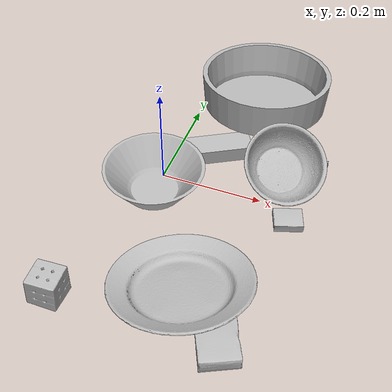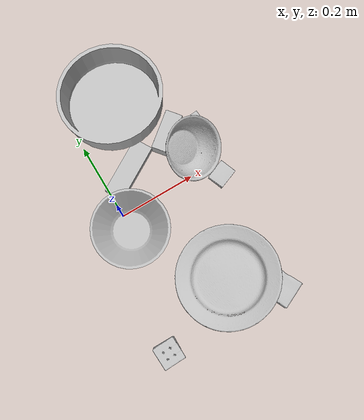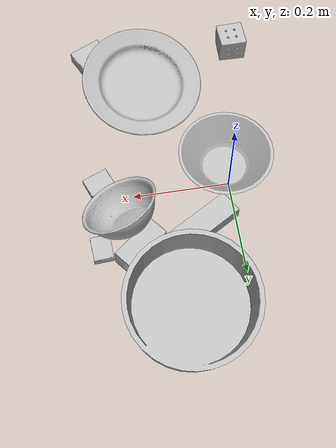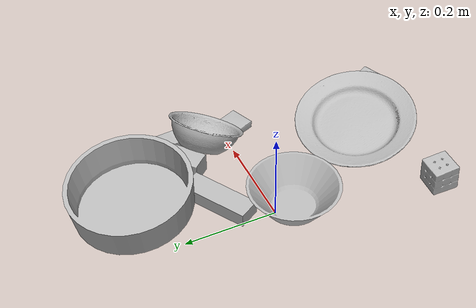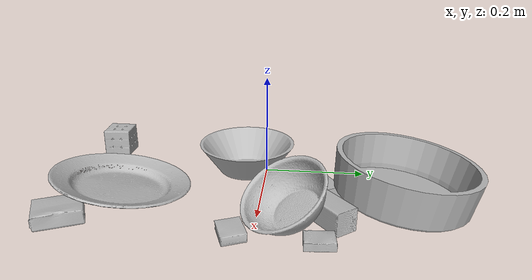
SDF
<sdf version="1.4">
  <world name="default">
    <light name="light1" type="point">
      <pose>0 0 1 0 0 0</pose>
      <diffuse>3 3 3 1</diffuse>
      <specular>3 3 3 1</specular>
    </light>
    <light name="light2" type="point">
      <pose>0 0.5 2 0 0 0</pose>
      <diffuse>1 1 1 1</diffuse>
      <specular>1 1 1 1</specular>
    </light>
    <light name="light3" type="point">
      <pose>0 0.5 2 0 0 0</pose>
      <diffuse>3 3 3 1</diffuse>
      <specular>3 3 3 1</specular>
    </light>
    <scene>
      <ambient>0.7 0.7 0.7</ambient>
    </scene>
    <model name="box1">
      <link name="link_box1">
        <collision name="default">
          <geometry>
            <mesh>
              <uri>model://rubiks_cube/collision_meshes/collision.obj</uri>
              <scale>1.0 1.0 1.0</scale>
            </mesh>
          </geometry>
          <surface>
            <friction>
              <ode>
                <mu>0.5</mu>
                <mu2>0.5</mu2>
              </ode>
            </friction>
          <contact>
        <ode>
            <max_vel>0</max_vel>
            <min_depth>0.0001</min_depth>
            <kp>1e8</kp>
        </ode>
    </contact></surface>
        </collision>
        <visual name="default">
          <geometry>
            <mesh>
              <uri>model://rubiks_cube/visual_meshes/visual.dae</uri>
              <scale>1.0 1.0 1.0</scale>
            </mesh>
          </geometry>
        </visual>
        <inertial>
          <mass>0.14937607944011688</mass>
          <pose>2.6721041649580002e-05 5.256967051536776e-05 -7.264316082000732e-06 -0.054671979216720346 -0.0981390543553378 -0.03445400726577695</pose>
          <inertia>
            <ixx>8.254031e-05</ixx>
            <iyy>8.2155384e-05</iyy>
            <izz>8.32243e-05</izz>
            <ixy>0</ixy>
            <ixz>0</ixz>
            <iyz>0</iyz>
          </inertia>
        </inertial>
      </link>
      <pose>-0.07063183188438416 -0.34415990114212036 0.02867894433438778 -3.7654067746040503e-06 -1.3157106853395588e-06 -1.546664689287885</pose>
    </model>
    <model name="box11">
      <link name="link_box11">
        <collision name="default">
          <geometry>
            <mesh>
              <uri>model://gelatin_box/collision_meshes/collision.obj</uri>
              <scale>1.0 1.0 1.0</scale>
            </mesh>
          </geometry>
          <surface>
            <friction>
              <ode>
                <mu>0.5</mu>
                <mu2>0.5</mu2>
              </ode>
            </friction>
          <contact>
        <ode>
            <max_vel>0</max_vel>
            <min_depth>0.0001</min_depth>
            <kp>1e8</kp>
        </ode>
    </contact></surface>
        </collision>
        <visual name="default">
          <geometry>
            <mesh>
              <uri>model://gelatin_box/visual_meshes/visual.dae</uri>
              <scale>1.0 1.0 1.0</scale>
            </mesh>
          </geometry>
        </visual>
        <inertial>
          <mass>0.1927502304315567</mass>
          <pose>0.0004319618456065655 0.00011156871914863586 -0.00036403213744051754 -0.0010503718519204429 -0.00475581822657324 0.016440557608202722</pose>
          <inertia>
            <ixx>0.00013606594</ixx>
            <iyy>9.7191194e-05</iyy>
            <izz>0.00020712269</izz>
            <ixy>0</ixy>
            <ixz>0</ixz>
            <iyz>0</iyz>
          </inertia>
        </inertial>
      </link>
      <pose>0.241270050406456 -0.3452698290348053 0.015168205834925175 0.0055884358331658385 -0.007300611694599438 0.43855420262678646</pose>
    </model>
    <model name="box2">
      <link name="link_box2">
        <collision name="default">
          <geometry>
            <mesh>
              <uri>model://jenga/collision_meshes/collision.obj</uri>
              <scale>1.0 1.0 1.0</scale>
            </mesh>
          </geometry>
          <surface>
            <friction>
              <ode>
                <mu>0.5</mu>
                <mu2>0.5</mu2>
              </ode>
            </friction>
          <contact>
        <ode>
            <max_vel>0</max_vel>
            <min_depth>0.0001</min_depth>
            <kp>1e8</kp>
        </ode>
    </contact></surface>
        </collision>
        <visual name="default">
          <geometry>
            <mesh>
              <uri>model://jenga/visual_meshes/visual.dae</uri>
              <scale>1.0 1.0 1.0</scale>
            </mesh>
          </geometry>
        </visual>
        <inertial>
          <mass>0.17753760516643524</mass>
          <pose>-2.5028555228345795e-07 -0.00010250010382151231 -4.0923401684267446e-05 0.0 -7.342155186052628e-07 0.0</pose>
          <inertia>
            <ixx>4.912897e-05</ixx>
            <iyy>0.00033289654</iyy>
            <izz>0.00035539534</izz>
            <ixy>0</ixy>
            <ixz>0</ixz>
            <iyz>0</iyz>
          </inertia>
        </inertial>
      </link>
      <pose>0.07107257843017578 0.09224313497543335 0.015000477433204651 -0.00010783471692515261 -2.7505224838512197e-07 -2.611989607291817</pose>
    </model>
    <model name="box21">
      <link name="link_box21">
        <collision name="default">
          <geometry>
            <mesh>
              <uri>model://cracker_box/collision_meshes/collision.obj</uri>
              <scale>0.25 0.25 0.25</scale>
            </mesh>
          </geometry>
          <surface>
            <friction>
              <ode>
                <mu>0.5</mu>
                <mu2>0.5</mu2>
              </ode>
            </friction>
          <contact>
        <ode>
            <max_vel>0</max_vel>
            <min_depth>0.0001</min_depth>
            <kp>1e8</kp>
        </ode>
    </contact></surface>
        </collision>
        <visual name="default">
          <geometry>
            <mesh>
              <uri>model://cracker_box/visual_meshes/visual.dae</uri>
              <scale>0.25 0.25 0.25</scale>
            </mesh>
          </geometry>
        </visual>
        <inertial>
          <mass>0.032025858759880066</mass>
          <pose>0.00023660347505938262 6.358561950037256e-05 -0.0004257383698131889 -0.0003162079452709603 -0.01110648960005095 0.0025467945380896087</pose>
          <inertia>
            <ixx>5.091218e-06</ixx>
            <iyy>8.406602e-06</iyy>
            <izz>1.1996991e-05</izz>
            <ixy>0</ixy>
            <ixz>0</ixz>
            <iyz>0</iyz>
          </inertia>
        </inertial>
      </link>
      <pose>0.2781735062599182 0.11023121327161789 0.009096028283238411 -0.014051142845708305 -0.005016053830306939 1.6294703827876138</pose>
    </model>
    <model name="box3">
      <link name="link_box3">
        <collision name="default">
          <geometry>
            <mesh>
              <uri>model://wood_block/collision_meshes/collision.obj</uri>
              <scale>0.5 0.5 0.5</scale>
            </mesh>
          </geometry>
          <surface>
            <friction>
              <ode>
                <mu>0.5</mu>
                <mu2>0.5</mu2>
              </ode>
            </friction>
          <contact>
        <ode>
            <max_vel>0</max_vel>
            <min_depth>0.0001</min_depth>
            <kp>1e8</kp>
        </ode>
    </contact></surface>
        </collision>
        <visual name="default">
          <geometry>
            <mesh>
              <uri>model://wood_block/visual_meshes/visual.dae</uri>
              <scale>0.5 0.5 0.5</scale>
            </mesh>
          </geometry>
        </visual>
        <inertial>
          <mass>0.12936852872371674</mass>
          <pose>-2.9066577553749084e-06 -0.00028540470520965755 0.00013204290007706732 -0.052209755292171825 -0.0051926950820086835 -0.006861377939779924</pose>
          <inertia>
            <ixx>4.327867e-05</ixx>
            <iyy>0.00013671734</iyy>
            <izz>0.00013620593</izz>
            <ixy>0</ixy>
            <ixz>0</ixz>
            <iyz>0</iyz>
          </inertia>
        </inertial>
      </link>
      <pose>0.20113258063793182 0.12322261929512024 0.02262919396162033 -0.005298820396700336 0.005731705370660259 0.6741425793231601</pose>
    </model>
    <model name="box31">
      <link name="link_box31">
        <collision name="default">
          <geometry>
            <mesh>
              <uri>model://pudding_box/collision_meshes/collision.obj</uri>
              <scale>0.5 0.5 0.5</scale>
            </mesh>
          </geometry>
          <surface>
            <friction>
              <ode>
                <mu>0.5</mu>
                <mu2>0.5</mu2>
              </ode>
            </friction>
          <contact>
        <ode>
            <max_vel>0</max_vel>
            <min_depth>0.0001</min_depth>
            <kp>1e8</kp>
        </ode>
    </contact></surface>
        </collision>
        <visual name="default">
          <geometry>
            <mesh>
              <uri>model://pudding_box/visual_meshes/visual.dae</uri>
              <scale>0.5 0.5 0.5</scale>
            </mesh>
          </geometry>
        </visual>
        <inertial>
          <mass>0.02777985855937004</mass>
          <pose>0.00024474109522998333 0.00040339428232982755 -0.0002594413817860186 0.005213100847255284 -0.006603800106148706 0.020079825159203687</pose>
          <inertia>
            <ixx>7.850925e-06</ixx>
            <iyy>5.282159e-06</iyy>
            <izz>1.1593943e-05</izz>
            <ixy>0</ixy>
            <ixz>0</ixz>
            <iyz>0</iyz>
          </inertia>
        </inertial>
      </link>
      <pose>0.26659339666366577 -0.03586307168006897 0.00986290443688631 0.022348755205431104 -0.01139160066087942 1.9439322330823523</pose>
    </model>
    <model name="plate1">
      <link name="link_plate1">
        <collision name="default">
          <geometry>
            <mesh>
              <uri>model://plate/collision_meshes/collision.obj</uri>
              <scale>1.0 1.0 1.0</scale>
            </mesh>
          </geometry>
          <surface>
            <friction>
              <ode>
                <mu>0.5</mu>
                <mu2>0.5</mu2>
              </ode>
            </friction>
          <contact>
        <ode>
            <max_vel>0</max_vel>
            <min_depth>0.0001</min_depth>
            <kp>1e8</kp>
        </ode>
    </contact></surface>
        </collision>
        <visual name="default">
          <geometry>
            <mesh>
              <uri>model://plate/visual_meshes/visual.dae</uri>
              <scale>1.0 1.0 1.0</scale>
            </mesh>
          </geometry>
        </visual>
        <inertial>
          <mass>0.18243028223514557</mass>
          <pose>-0.0006044635083526373 0.00027825916185975075 -0.0010561967501416802 0.002218802985991306 -0.003225472580220492 0.4526054178664253</pose>
          <inertia>
            <ixx>0.00085341244</ixx>
            <iyy>0.00084524986</iyy>
            <izz>0.0016691468</izz>
            <ixy>0</ixy>
            <ixz>0</ixz>
            <iyz>0</iyz>
          </inertia>
        </inertial>
      </link>
      <pose>0.1447150558233261 -0.26405447721481323 0.027492567896842957 0.020950251403782223 0.18478114086073558 2.286864447187318</pose>
    </model>
    <model name="bowl1">
      <link name="link_bowl1">
        <collision name="default">
          <geometry>
            <mesh>
              <uri>model://bowl_a/collision_meshes/collision.obj</uri>
              <scale>1.0 1.0 1.0</scale>
            </mesh>
          </geometry>
          <surface>
            <friction>
              <ode>
                <mu>0.5</mu>
                <mu2>0.5</mu2>
              </ode>
            </friction>
          <contact>
        <ode>
            <max_vel>0</max_vel>
            <min_depth>0.0001</min_depth>
            <kp>1e8</kp>
        </ode>
    </contact></surface>
        </collision>
        <visual name="default">
          <geometry>
            <mesh>
              <uri>model://bowl_a/visual_meshes/visual.dae</uri>
              <scale>1.0 1.0 1.0</scale>
            </mesh>
          </geometry>
        </visual>
        <inertial>
          <mass>0.33530884981155396</mass>
          <pose>0.00027867525932379067 4.7312179958680645e-05 -0.0013765293406322598 -0.0009805353119733814 -0.0010938238033148682 -0.19123781325276382</pose>
          <inertia>
            <ixx>0.0009546399</ixx>
            <iyy>0.0009605007</iyy>
            <izz>0.0016978635</izz>
            <ixy>0</ixy>
            <ixz>0</ixz>
            <iyz>0</iyz>
          </inertia>
        </inertial>
      </link>
      <pose>0.00010509119601920247 -0.04213863983750343 0.030382998287677765 2.420859297191299e-08 4.6198099716347526e-08 -2.196328875862385</pose>
    </model>
    <model name="plate2">
      <link name="link_plate2">
        <collision name="default">
          <geometry>
            <mesh>
              <uri>model://pan_tefal/collision_meshes/collision.obj</uri>
              <scale>1.0 1.0 1.0</scale>
            </mesh>
          </geometry>
          <surface>
            <friction>
              <ode>
                <mu>0.5</mu>
                <mu2>0.5</mu2>
              </ode>
            </friction>
          <contact>
        <ode>
            <max_vel>0</max_vel>
            <min_depth>0.0001</min_depth>
            <kp>1e8</kp>
        </ode>
    </contact></surface>
        </collision>
        <visual name="default">
          <geometry>
            <mesh>
              <uri>model://pan_tefal/visual_meshes/visual.dae</uri>
              <scale>1.0 1.0 1.0</scale>
            </mesh>
          </geometry>
        </visual>
        <inertial>
          <mass>1.3054066896438599</mass>
          <pose>-0.00018001779972109944 3.2791245757834986e-05 -0.008514936082065105 0.0008190347553724757 -0.0003301394488099971 -0.33186691456643896</pose>
          <inertia>
            <ixx>0.00901116</ixx>
            <iyy>0.009069256</iyy>
            <izz>0.016587809</izz>
            <ixy>0</ixy>
            <ixz>0</ixz>
            <iyz>0</iyz>
          </inertia>
        </inertial>
      </link>
      <pose>0.12365995347499847 0.2634424567222595 0.05277608707547188 0.08168077243992011 -0.10890004351654602 -2.102799140772389</pose>
    </model>
    <model name="bowl2">
      <link name="link_bowl2">
        <collision name="default">
          <geometry>
            <mesh>
              <uri>model://bowl/collision_meshes/collision.obj</uri>
              <scale>1.0 1.0 1.0</scale>
            </mesh>
          </geometry>
          <surface>
            <friction>
              <ode>
                <mu>0.5</mu>
                <mu2>0.5</mu2>
              </ode>
            </friction>
          <contact>
        <ode>
            <max_vel>0</max_vel>
            <min_depth>0.0001</min_depth>
            <kp>1e8</kp>
        </ode>
    </contact></surface>
        </collision>
        <visual name="default">
          <geometry>
            <mesh>
              <uri>model://bowl/visual_meshes/visual.dae</uri>
              <scale>1.0 1.0 1.0</scale>
            </mesh>
          </geometry>
        </visual>
        <inertial>
          <mass>0.1096961572766304</mass>
          <pose>0.00020445209520403296 -0.0010302049340680242 -0.0008042648551054299 -0.015764066902751193 0.014546817497496476 0.7140421604823016</pose>
          <inertia>
            <ixx>0.00025198064</ixx>
            <iyy>0.00024635042</iyy>
            <izz>0.0004239182</izz>
            <ixy>0</ixy>
            <ixz>0</ixz>
            <iyz>0</iyz>
          </inertia>
        </inertial>
      </link>
      <pose>0.2251337319612503 0.05782752484083176 0.047907207161188126 0.4986514523673887 -0.33479163917262833 1.2045936097676773</pose>
    </model>
  <physics type="ode">
      <max_contacts>50</max_contacts>
      <ode>
        <solver>
          <type>quick</type>
          <iters>75</iters>
        </solver>
        <constraints>
          <contact_max_correcting_vel>0</contact_max_correcting_vel>
          <contact_surface_layer>0</contact_surface_layer>
        </constraints>
      </ode>
    </physics></world>
</sdf>
